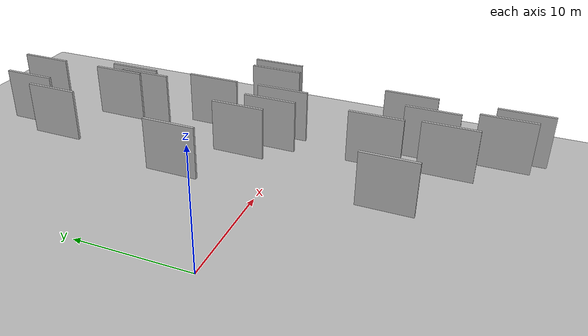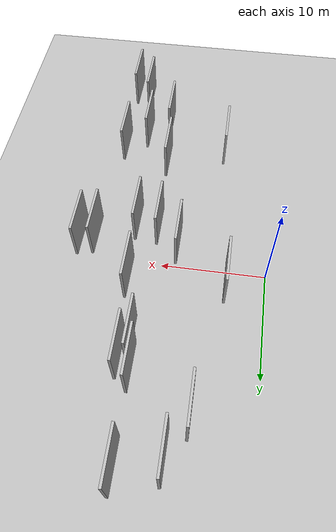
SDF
<?xml version="1.0" encoding="utf-8"?>

<sdf version="1.6">

   <world name="default">

      <gui fullscreen="0">

         <camera name="user_camera">

            <pose>-15 0 4.57585 0 0 0</pose>

            <view_controller>orbit</view_controller>

         </camera>

      </gui>

      <scene>

         <sky>

           <clouds>

             <speed>12</speed>

           </clouds>

         </sky>

         <ambient>0.4 0.4 0.4 1</ambient>

         <background>0.7 0.7 0.7 1</background>

         <shadows>1</shadows>

      </scene>

      <gravity>0 0 -9.8066</gravity>

      <magnetic_field>6e-06 2.3e-05 -4.2e-05</magnetic_field>

      <physics default="0" name="default_physics" type="ode">

         <ode>

            <solver>

               <type>quick</type>

               <iters>10</iters>

               <sor>1.0</sor>

               <use_dynamic_moi_rescaling>0</use_dynamic_moi_rescaling>

            </solver>

            <constraints>

               <cfm>0</cfm>

               <erp>0.2</erp>

               <contact_max_correcting_vel>100</contact_max_correcting_vel>

               <contact_surface_layer>0.001</contact_surface_layer>

            </constraints>

         </ode>

         <max_step_size>0.004</max_step_size>

         <real_time_factor>1</real_time_factor>

         <real_time_update_rate>250</real_time_update_rate>

      </physics>

      <light name="sun" type="directional">

         <cast_shadows>1</cast_shadows>

         <pose>0 0 10 0 0 0</pose>

         <diffuse>0.8 0.8 0.8 1</diffuse>

         <specular>0.2 0.2 0.2 1</specular>

         <attenuation>

            <range>1000</range>

            <constant>0.9</constant>

            <linear>0.01</linear>

            <quadratic>0.001</quadratic>

         </attenuation>

         <direction>-0.5 0.1 -0.9</direction>

      </light>

      <include>

         <name>ground_plane_1</name>

         <uri>model://HANNAS_ground_plane</uri>

         <pose>0 0 0  0 0 0</pose>

      </include>

      <include>

         <name>ground_plane_2</name>

         <uri>model://HANNAS_ground_plane</uri>

         <pose>100 0 0  0 0 0</pose>

      </include>

      <model name="HANNAS_wall_1">

         <static>1</static>

         <pose frame="">10.8889 -14.2298 5.0 0.000000 0.000000 1.570796</pose>

         <link name="link">

            <pose frame="">0 0 2.00 0 0 0</pose>

            <collision name="collision">

               <geometry>

                  <box>

                     <size>4.00 0.2 4.00</size>

                  </box>

               </geometry>

               <max_contacts>10</max_contacts>

               <surface>

                  <contact>

                     <ode/>

                  </contact>

                  <bounce/>

                  <friction>

                     <torsional>

                        <ode/>

                     </torsional>

                     <ode/>

                  </friction>

               </surface>

            </collision>

            <visual name="visual">

               <cast_shadows>0</cast_shadows>

               <geometry>

                  <box>

                     <size>4.00 0.2 4.00</size>

                  </box>

               </geometry>

               <material>

                  <script>

                     <uri>model://HANNAS_wall/materials/scripts</uri>

                     <uri>model://HANNAS_wall/materials/textures</uri>

                     <name>vrc/HANNAS_wall</name>

                  </script>

               </material>

            </visual>

            <self_collide>0</self_collide>

            <enable_wind>0</enable_wind>

            <kinematic>0</kinematic>

         </link>

      </model>

      <model name="HANNAS_wall_2">

         <static>1</static>

         <pose frame="">14.9847 -18.7837 5.0 0.000000 0.000000 1.570796</pose>

         <link name="link">

            <pose frame="">0 0 2.00 0 0 0</pose>

            <collision name="collision">

               <geometry>

                  <box>

                     <size>4.00 0.2 4.00</size>

                  </box>

               </geometry>

               <max_contacts>10</max_contacts>

               <surface>

                  <contact>

                     <ode/>

                  </contact>

                  <bounce/>

                  <friction>

                     <torsional>

                        <ode/>

                     </torsional>

                     <ode/>

                  </friction>

               </surface>

            </collision>

            <visual name="visual">

               <cast_shadows>0</cast_shadows>

               <geometry>

                  <box>

                     <size>4.00 0.2 4.00</size>

                  </box>

               </geometry>

               <material>

                  <script>

                     <uri>model://HANNAS_wall/materials/scripts</uri>

                     <uri>model://HANNAS_wall/materials/textures</uri>

                     <name>vrc/HANNAS_wall</name>

                  </script>

               </material>

            </visual>

            <self_collide>0</self_collide>

            <enable_wind>0</enable_wind>

            <kinematic>0</kinematic>

         </link>

      </model>

      <model name="HANNAS_wall_3">

         <static>1</static>

         <pose frame="">14.9045 -10.6880 5.0 0.000000 0.000000 1.570796</pose>

         <link name="link">

            <pose frame="">0 0 2.00 0 0 0</pose>

            <collision name="collision">

               <geometry>

                  <box>

                     <size>4.00 0.2 4.00</size>

                  </box>

               </geometry>

               <max_contacts>10</max_contacts>

               <surface>

                  <contact>

                     <ode/>

                  </contact>

                  <bounce/>

                  <friction>

                     <torsional>

                        <ode/>

                     </torsional>

                     <ode/>

                  </friction>

               </surface>

            </collision>

            <visual name="visual">

               <cast_shadows>0</cast_shadows>

               <geometry>

                  <box>

                     <size>4.00 0.2 4.00</size>

                  </box>

               </geometry>

               <material>

                  <script>

                     <uri>model://HANNAS_wall/materials/scripts</uri>

                     <uri>model://HANNAS_wall/materials/textures</uri>

                     <name>vrc/HANNAS_wall</name>

                  </script>

               </material>

            </visual>

            <self_collide>0</self_collide>

            <enable_wind>0</enable_wind>

            <kinematic>0</kinematic>

         </link>

      </model>

      <model name="HANNAS_wall_4">

         <static>1</static>

         <pose frame="">13.5691 -17.7444 5.0 0.000000 0.000000 1.570796</pose>

         <link name="link">

            <pose frame="">0 0 2.00 0 0 0</pose>

            <collision name="collision">

               <geometry>

                  <box>

                     <size>4.00 0.2 4.00</size>

                  </box>

               </geometry>

               <max_contacts>10</max_contacts>

               <surface>

                  <contact>

                     <ode/>

                  </contact>

                  <bounce/>

                  <friction>

                     <torsional>

                        <ode/>

                     </torsional>

                     <ode/>

                  </friction>

               </surface>

            </collision>

            <visual name="visual">

               <cast_shadows>0</cast_shadows>

               <geometry>

                  <box>

                     <size>4.00 0.2 4.00</size>

                  </box>

               </geometry>

               <material>

                  <script>

                     <uri>model://HANNAS_wall/materials/scripts</uri>

                     <uri>model://HANNAS_wall/materials/textures</uri>

                     <name>vrc/HANNAS_wall</name>

                  </script>

               </material>

            </visual>

            <self_collide>0</self_collide>

            <enable_wind>0</enable_wind>

            <kinematic>0</kinematic>

         </link>

      </model>

      <model name="HANNAS_wall_5">

         <static>1</static>

         <pose frame="">12.9070 -12.6352 5.0 0.000000 0.000000 1.570796</pose>

         <link name="link">

            <pose frame="">0 0 2.00 0 0 0</pose>

            <collision name="collision">

               <geometry>

                  <box>

                     <size>4.00 0.2 4.00</size>

                  </box>

               </geometry>

               <max_contacts>10</max_contacts>

               <surface>

                  <contact>

                     <ode/>

                  </contact>

                  <bounce/>

                  <friction>

                     <torsional>

                        <ode/>

                     </torsional>

                     <ode/>

                  </friction>

               </surface>

            </collision>

            <visual name="visual">

               <cast_shadows>0</cast_shadows>

               <geometry>

                  <box>

                     <size>4.00 0.2 4.00</size>

                  </box>

               </geometry>

               <material>

                  <script>

                     <uri>model://HANNAS_wall/materials/scripts</uri>

                     <uri>model://HANNAS_wall/materials/textures</uri>

                     <name>vrc/HANNAS_wall</name>

                  </script>

               </material>

            </visual>

            <self_collide>0</self_collide>

            <enable_wind>0</enable_wind>

            <kinematic>0</kinematic>

         </link>

      </model>

      <model name="HANNAS_wall_6">

         <static>1</static>

         <pose frame="">16.9244 0.6680 5.0 0.000000 0.000000 1.570796</pose>

         <link name="link">

            <pose frame="">0 0 2.00 0 0 0</pose>

            <collision name="collision">

               <geometry>

                  <box>

                     <size>4.00 0.2 4.00</size>

                  </box>

               </geometry>

               <max_contacts>10</max_contacts>

               <surface>

                  <contact>

                     <ode/>

                  </contact>

                  <bounce/>

                  <friction>

                     <torsional>

                        <ode/>

                     </torsional>

                     <ode/>

                  </friction>

               </surface>

            </collision>

            <visual name="visual">

               <cast_shadows>0</cast_shadows>

               <geometry>

                  <box>

                     <size>4.00 0.2 4.00</size>

                  </box>

               </geometry>

               <material>

                  <script>

                     <uri>model://HANNAS_wall/materials/scripts</uri>

                     <uri>model://HANNAS_wall/materials/textures</uri>

                     <name>vrc/HANNAS_wall</name>

                  </script>

               </material>

            </visual>

            <self_collide>0</self_collide>

            <enable_wind>0</enable_wind>

            <kinematic>0</kinematic>

         </link>

      </model>

      <model name="HANNAS_wall_7">

         <static>1</static>

         <pose frame="">10.5341 -9.1394 5.0 0.000000 0.000000 1.570796</pose>

         <link name="link">

            <pose frame="">0 0 2.00 0 0 0</pose>

            <collision name="collision">

               <geometry>

                  <box>

                     <size>4.00 0.2 4.00</size>

                  </box>

               </geometry>

               <max_contacts>10</max_contacts>

               <surface>

                  <contact>

                     <ode/>

                  </contact>

                  <bounce/>

                  <friction>

                     <torsional>

                        <ode/>

                     </torsional>

                     <ode/>

                  </friction>

               </surface>

            </collision>

            <visual name="visual">

               <cast_shadows>0</cast_shadows>

               <geometry>

                  <box>

                     <size>4.00 0.2 4.00</size>

                  </box>

               </geometry>

               <material>

                  <script>

                     <uri>model://HANNAS_wall/materials/scripts</uri>

                     <uri>model://HANNAS_wall/materials/textures</uri>

                     <name>vrc/HANNAS_wall</name>

                  </script>

               </material>

            </visual>

            <self_collide>0</self_collide>

            <enable_wind>0</enable_wind>

            <kinematic>0</kinematic>

         </link>

      </model>

      <model name="HANNAS_wall_8">

         <static>1</static>

         <pose frame="">8.2956 0.4859 5.0 0.000000 0.000000 1.570796</pose>

         <link name="link">

            <pose frame="">0 0 2.00 0 0 0</pose>

            <collision name="collision">

               <geometry>

                  <box>

                     <size>4.00 0.2 4.00</size>

                  </box>

               </geometry>

               <max_contacts>10</max_contacts>

               <surface>

                  <contact>

                     <ode/>

                  </contact>

                  <bounce/>

                  <friction>

                     <torsional>

                        <ode/>

                     </torsional>

                     <ode/>

                  </friction>

               </surface>

            </collision>

            <visual name="visual">

               <cast_shadows>0</cast_shadows>

               <geometry>

                  <box>

                     <size>4.00 0.2 4.00</size>

                  </box>

               </geometry>

               <material>

                  <script>

                     <uri>model://HANNAS_wall/materials/scripts</uri>

                     <uri>model://HANNAS_wall/materials/textures</uri>

                     <name>vrc/HANNAS_wall</name>

                  </script>

               </material>

            </visual>

            <self_collide>0</self_collide>

            <enable_wind>0</enable_wind>

            <kinematic>0</kinematic>

         </link>

      </model>

      <model name="HANNAS_wall_9">

         <static>1</static>

         <pose frame="">10.2159 -1.2427 5.0 0.000000 0.000000 1.570796</pose>

         <link name="link">

            <pose frame="">0 0 2.00 0 0 0</pose>

            <collision name="collision">

               <geometry>

                  <box>

                     <size>4.00 0.2 4.00</size>

                  </box>

               </geometry>

               <max_contacts>10</max_contacts>

               <surface>

                  <contact>

                     <ode/>

                  </contact>

                  <bounce/>

                  <friction>

                     <torsional>

                        <ode/>

                     </torsional>

                     <ode/>

                  </friction>

               </surface>

            </collision>

            <visual name="visual">

               <cast_shadows>0</cast_shadows>

               <geometry>

                  <box>

                     <size>4.00 0.2 4.00</size>

                  </box>

               </geometry>

               <material>

                  <script>

                     <uri>model://HANNAS_wall/materials/scripts</uri>

                     <uri>model://HANNAS_wall/materials/textures</uri>

                     <name>vrc/HANNAS_wall</name>

                  </script>

               </material>

            </visual>

            <self_collide>0</self_collide>

            <enable_wind>0</enable_wind>

            <kinematic>0</kinematic>

         </link>

      </model>

      <model name="HANNAS_wall_10">

         <static>1</static>

         <pose frame="">5.1583 -11.3950 5.0 0.000000 0.000000 1.570796</pose>

         <link name="link">

            <pose frame="">0 0 2.00 0 0 0</pose>

            <collision name="collision">

               <geometry>

                  <box>

                     <size>4.00 0.2 4.00</size>

                  </box>

               </geometry>

               <max_contacts>10</max_contacts>

               <surface>

                  <contact>

                     <ode/>

                  </contact>

                  <bounce/>

                  <friction>

                     <torsional>

                        <ode/>

                     </torsional>

                     <ode/>

                  </friction>

               </surface>

            </collision>

            <visual name="visual">

               <cast_shadows>0</cast_shadows>

               <geometry>

                  <box>

                     <size>4.00 0.2 4.00</size>

                  </box>

               </geometry>

               <material>

                  <script>

                     <uri>model://HANNAS_wall/materials/scripts</uri>

                     <uri>model://HANNAS_wall/materials/textures</uri>

                     <name>vrc/HANNAS_wall</name>

                  </script>

               </material>

            </visual>

            <self_collide>0</self_collide>

            <enable_wind>0</enable_wind>

            <kinematic>0</kinematic>

         </link>

      </model>

      <model name="HANNAS_wall_11">

         <static>1</static>

         <pose frame="">12.0324 4.2456 5.0 0.000000 0.000000 1.570796</pose>

         <link name="link">

            <pose frame="">0 0 2.00 0 0 0</pose>

            <collision name="collision">

               <geometry>

                  <box>

                     <size>4.00 0.2 4.00</size>

                  </box>

               </geometry>

               <max_contacts>10</max_contacts>

               <surface>

                  <contact>

                     <ode/>

                  </contact>

                  <bounce/>

                  <friction>

                     <torsional>

                        <ode/>

                     </torsional>

                     <ode/>

                  </friction>

               </surface>

            </collision>

            <visual name="visual">

               <cast_shadows>0</cast_shadows>

               <geometry>

                  <box>

                     <size>4.00 0.2 4.00</size>

                  </box>

               </geometry>

               <material>

                  <script>

                     <uri>model://HANNAS_wall/materials/scripts</uri>

                     <uri>model://HANNAS_wall/materials/textures</uri>

                     <name>vrc/HANNAS_wall</name>

                  </script>

               </material>

            </visual>

            <self_collide>0</self_collide>

            <enable_wind>0</enable_wind>

            <kinematic>0</kinematic>

         </link>

      </model>

      <model name="HANNAS_wall_12">

         <static>1</static>

         <pose frame="">5.5528 14.7077 5.0 0.000000 0.000000 1.570796</pose>

         <link name="link">

            <pose frame="">0 0 2.00 0 0 0</pose>

            <collision name="collision">

               <geometry>

                  <box>

                     <size>4.00 0.2 4.00</size>

                  </box>

               </geometry>

               <max_contacts>10</max_contacts>

               <surface>

                  <contact>

                     <ode/>

                  </contact>

                  <bounce/>

                  <friction>

                     <torsional>

                        <ode/>

                     </torsional>

                     <ode/>

                  </friction>

               </surface>

            </collision>

            <visual name="visual">

               <cast_shadows>0</cast_shadows>

               <geometry>

                  <box>

                     <size>4.00 0.2 4.00</size>

                  </box>

               </geometry>

               <material>

                  <script>

                     <uri>model://HANNAS_wall/materials/scripts</uri>

                     <uri>model://HANNAS_wall/materials/textures</uri>

                     <name>vrc/HANNAS_wall</name>

                  </script>

               </material>

            </visual>

            <self_collide>0</self_collide>

            <enable_wind>0</enable_wind>

            <kinematic>0</kinematic>

         </link>

      </model>

      <model name="HANNAS_wall_13">

         <static>1</static>

         <pose frame="">10.3881 18.9815 5.0 0.000000 0.000000 1.570796</pose>

         <link name="link">

            <pose frame="">0 0 2.00 0 0 0</pose>

            <collision name="collision">

               <geometry>

                  <box>

                     <size>4.00 0.2 4.00</size>

                  </box>

               </geometry>

               <max_contacts>10</max_contacts>

               <surface>

                  <contact>

                     <ode/>

                  </contact>

                  <bounce/>

                  <friction>

                     <torsional>

                        <ode/>

                     </torsional>

                     <ode/>

                  </friction>

               </surface>

            </collision>

            <visual name="visual">

               <cast_shadows>0</cast_shadows>

               <geometry>

                  <box>

                     <size>4.00 0.2 4.00</size>

                  </box>

               </geometry>

               <material>

                  <script>

                     <uri>model://HANNAS_wall/materials/scripts</uri>

                     <uri>model://HANNAS_wall/materials/textures</uri>

                     <name>vrc/HANNAS_wall</name>

                  </script>

               </material>

            </visual>

            <self_collide>0</self_collide>

            <enable_wind>0</enable_wind>

            <kinematic>0</kinematic>

         </link>

      </model>

      <model name="HANNAS_wall_14">

         <static>1</static>

         <pose frame="">6.9968 17.9632 5.0 0.000000 0.000000 1.570796</pose>

         <link name="link">

            <pose frame="">0 0 2.00 0 0 0</pose>

            <collision name="collision">

               <geometry>

                  <box>

                     <size>4.00 0.2 4.00</size>

                  </box>

               </geometry>

               <max_contacts>10</max_contacts>

               <surface>

                  <contact>

                     <ode/>

                  </contact>

                  <bounce/>

                  <friction>

                     <torsional>

                        <ode/>

                     </torsional>

                     <ode/>

                  </friction>

               </surface>

            </collision>

            <visual name="visual">

               <cast_shadows>0</cast_shadows>

               <geometry>

                  <box>

                     <size>4.00 0.2 4.00</size>

                  </box>

               </geometry>

               <material>

                  <script>

                     <uri>model://HANNAS_wall/materials/scripts</uri>

                     <uri>model://HANNAS_wall/materials/textures</uri>

                     <name>vrc/HANNAS_wall</name>

                  </script>

               </material>

            </visual>

            <self_collide>0</self_collide>

            <enable_wind>0</enable_wind>

            <kinematic>0</kinematic>

         </link>

      </model>

      <model name="HANNAS_wall_15">

         <static>1</static>

         <pose frame="">11.5065 11.0595 5.0 0.000000 0.000000 1.570796</pose>

         <link name="link">

            <pose frame="">0 0 2.00 0 0 0</pose>

            <collision name="collision">

               <geometry>

                  <box>

                     <size>4.00 0.2 4.00</size>

                  </box>

               </geometry>

               <max_contacts>10</max_contacts>

               <surface>

                  <contact>

                     <ode/>

                  </contact>

                  <bounce/>

                  <friction>

                     <torsional>

                        <ode/>

                     </torsional>

                     <ode/>

                  </friction>

               </surface>

            </collision>

            <visual name="visual">

               <cast_shadows>0</cast_shadows>

               <geometry>

                  <box>

                     <size>4.00 0.2 4.00</size>

                  </box>

               </geometry>

               <material>

                  <script>

                     <uri>model://HANNAS_wall/materials/scripts</uri>

                     <uri>model://HANNAS_wall/materials/textures</uri>

                     <name>vrc/HANNAS_wall</name>

                  </script>

               </material>

            </visual>

            <self_collide>0</self_collide>

            <enable_wind>0</enable_wind>

            <kinematic>0</kinematic>

         </link>

      </model>

      <model name="HANNAS_wall_16">

         <static>1</static>

         <pose frame="">3.8887 3.6463 5.0 0.000000 0.000000 1.570796</pose>

         <link name="link">

            <pose frame="">0 0 2.00 0 0 0</pose>

            <collision name="collision">

               <geometry>

                  <box>

                     <size>4.00 0.2 4.00</size>

                  </box>

               </geometry>

               <max_contacts>10</max_contacts>

               <surface>

                  <contact>

                     <ode/>

                  </contact>

                  <bounce/>

                  <friction>

                     <torsional>

                        <ode/>

                     </torsional>

                     <ode/>

                  </friction>

               </surface>

            </collision>

            <visual name="visual">

               <cast_shadows>0</cast_shadows>

               <geometry>

                  <box>

                     <size>4.00 0.2 4.00</size>

                  </box>

               </geometry>

               <material>

                  <script>

                     <uri>model://HANNAS_wall/materials/scripts</uri>

                     <uri>model://HANNAS_wall/materials/textures</uri>

                     <name>vrc/HANNAS_wall</name>

                  </script>

               </material>

            </visual>

            <self_collide>0</self_collide>

            <enable_wind>0</enable_wind>

            <kinematic>0</kinematic>

         </link>

      </model>

      <model name="HANNAS_wall_17">

         <static>1</static>

         <pose frame="">15.5966 0.3915 5.0 0.000000 0.000000 1.570796</pose>

         <link name="link">

            <pose frame="">0 0 2.00 0 0 0</pose>

            <collision name="collision">

               <geometry>

                  <box>

                     <size>4.00 0.2 4.00</size>

                  </box>

               </geometry>

               <max_contacts>10</max_contacts>

               <surface>

                  <contact>

                     <ode/>

                  </contact>

                  <bounce/>

                  <friction>

                     <torsional>

                        <ode/>

                     </torsional>

                     <ode/>

                  </friction>

               </surface>

            </collision>

            <visual name="visual">

               <cast_shadows>0</cast_shadows>

               <geometry>

                  <box>

                     <size>4.00 0.2 4.00</size>

                  </box>

               </geometry>

               <material>

                  <script>

                     <uri>model://HANNAS_wall/materials/scripts</uri>

                     <uri>model://HANNAS_wall/materials/textures</uri>

                     <name>vrc/HANNAS_wall</name>

                  </script>

               </material>

            </visual>

            <self_collide>0</self_collide>

            <enable_wind>0</enable_wind>

            <kinematic>0</kinematic>

         </link>

      </model>

      <model name="HANNAS_wall_18">

         <static>1</static>

         <pose frame="">10.4597 11.9430 5.0 0.000000 0.000000 1.570796</pose>

         <link name="link">

            <pose frame="">0 0 2.00 0 0 0</pose>

            <collision name="collision">

               <geometry>

                  <box>

                     <size>4.00 0.2 4.00</size>

                  </box>

               </geometry>

               <max_contacts>10</max_contacts>

               <surface>

                  <contact>

                     <ode/>

                  </contact>

                  <bounce/>

                  <friction>

                     <torsional>

                        <ode/>

                     </torsional>

                     <ode/>

                  </friction>

               </surface>

            </collision>

            <visual name="visual">

               <cast_shadows>0</cast_shadows>

               <geometry>

                  <box>

                     <size>4.00 0.2 4.00</size>

                  </box>

               </geometry>

               <material>

                  <script>

                     <uri>model://HANNAS_wall/materials/scripts</uri>

                     <uri>model://HANNAS_wall/materials/textures</uri>

                     <name>vrc/HANNAS_wall</name>

                  </script>

               </material>

            </visual>

            <self_collide>0</self_collide>

            <enable_wind>0</enable_wind>

            <kinematic>0</kinematic>

         </link>

      </model>

      <model name="HANNAS_wall_19">

         <static>1</static>

         <pose frame="">12.1713 -1.4777 5.0 0.000000 0.000000 1.570796</pose>

         <link name="link">

            <pose frame="">0 0 2.00 0 0 0</pose>

            <collision name="collision">

               <geometry>

                  <box>

                     <size>4.00 0.2 4.00</size>

                  </box>

               </geometry>

               <max_contacts>10</max_contacts>

               <surface>

                  <contact>

                     <ode/>

                  </contact>

                  <bounce/>

                  <friction>

                     <torsional>

                        <ode/>

                     </torsional>

                     <ode/>

                  </friction>

               </surface>

            </collision>

            <visual name="visual">

               <cast_shadows>0</cast_shadows>

               <geometry>

                  <box>

                     <size>4.00 0.2 4.00</size>

                  </box>

               </geometry>

               <material>

                  <script>

                     <uri>model://HANNAS_wall/materials/scripts</uri>

                     <uri>model://HANNAS_wall/materials/textures</uri>

                     <name>vrc/HANNAS_wall</name>

                  </script>

               </material>

            </visual>

            <self_collide>0</self_collide>

            <enable_wind>0</enable_wind>

            <kinematic>0</kinematic>

         </link>

      </model>

      <model name="HANNAS_wall_20">

         <static>1</static>

         <pose frame="">10.8024 9.7213 5.0 0.000000 0.000000 1.570796</pose>

         <link name="link">

            <pose frame="">0 0 2.00 0 0 0</pose>

            <collision name="collision">

               <geometry>

                  <box>

                     <size>4.00 0.2 4.00</size>

                  </box>

               </geometry>

               <max_contacts>10</max_contacts>

               <surface>

                  <contact>

                     <ode/>

                  </contact>

                  <bounce/>

                  <friction>

                     <torsional>

                        <ode/>

                     </torsional>

                     <ode/>

                  </friction>

               </surface>

            </collision>

            <visual name="visual">

               <cast_shadows>0</cast_shadows>

               <geometry>

                  <box>

                     <size>4.00 0.2 4.00</size>

                  </box>

               </geometry>

               <material>

                  <script>

                     <uri>model://HANNAS_wall/materials/scripts</uri>

                     <uri>model://HANNAS_wall/materials/textures</uri>

                     <name>vrc/HANNAS_wall</name>

                  </script>

               </material>

            </visual>

            <self_collide>0</self_collide>

            <enable_wind>0</enable_wind>

            <kinematic>0</kinematic>

         </link>

      </model>

   </world>

</sdf>

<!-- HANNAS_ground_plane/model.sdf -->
<sdf version="1.4">
<model name="HANNAS_ground_plane">
  <static>true</static>
    <link name="link">
      <collision name="collision">
        <geometry>
          <plane>
            <normal>0 0 1</normal>
            <size>1000 1000</size>
          </plane>
        </geometry>
        <surface>
          <friction>
            <ode>
              <mu>100</mu>
              <mu2>50</mu2>
            </ode>
          </friction>
        </surface>
      </collision>
      <visual name="visual">
        <cast_shadows>false</cast_shadows>
        <geometry>
          <plane>
            <normal>0 0 1</normal>
            <size>1000 1000</size>
          </plane>
        </geometry>
        <material>
          <script>
            <uri>model://HANNAS_ground_plane/materials/scripts/HANNAS_ground_plane.material</uri>
	    <uri>model://HANNAS_ground_plane/materials/textures</uri>
            <name>HANNASGroundPlane/Image</name>
          </script>
        </material>
      </visual>
    </link>
  </model>
</sdf>
